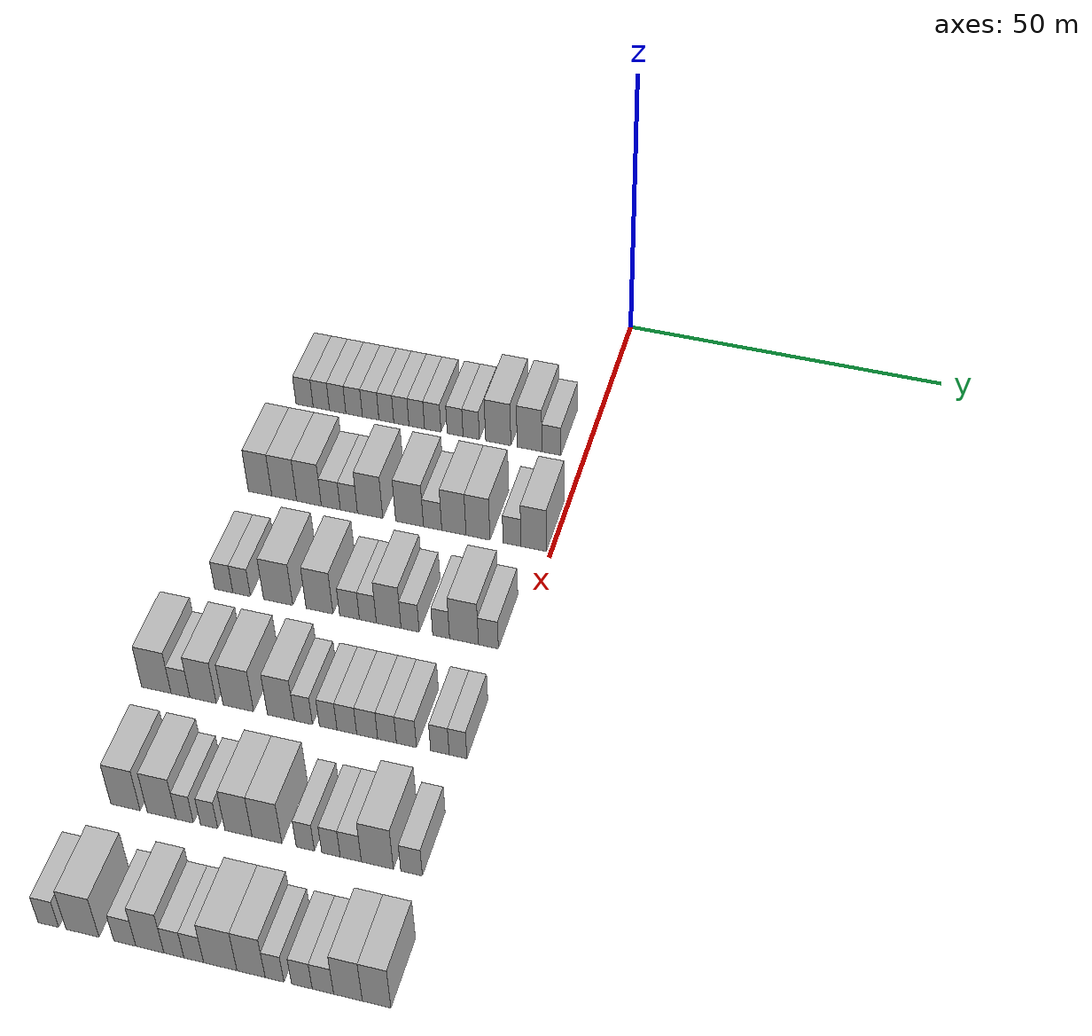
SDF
<sdf version="1.6">
 <world name="default">
  <model name="building_74">
   <static>1</static>
   <pose>25.0000 -44.7502 0 0.000000 0.000000 0.000000</pose>
   <link name="link">
    <pose>0 0 3.00 0 0 0</pose>
    <collision name="collision"><geometry><box><size>10.0000 2.8169 6.0000</size></box></geometry></collision>
    <visual name="visual">
     <cast_shadows>0</cast_shadows>
     <geometry><box><size>10.0000 2.8169 6.0000</size></box></geometry>
     <material>
      <script>
       <uri>model://HANNAS_wall/materials/scripts</uri>
       <uri>model://HANNAS_wall/materials/textures</uri>
       <name>vrc/HANNAS_wall</name>
      </script>
     </material>
    </visual>
   </link>
  </model>
  <model name="building_75">
   <static>1</static>
   <pose>25.0000 -42.0156 0 0.000000 0.000000 0.000000</pose>
   <link name="link">
    <pose>0 0 3.00 0 0 0</pose>
    <collision name="collision"><geometry><box><size>10.0000 2.6525 6.0000</size></box></geometry></collision>
    <visual name="visual">
     <cast_shadows>0</cast_shadows>
     <geometry><box><size>10.0000 2.6525 6.0000</size></box></geometry>
     <material>
      <script>
       <uri>model://HANNAS_wall/materials/scripts</uri>
       <uri>model://HANNAS_wall/materials/textures</uri>
       <name>vrc/HANNAS_wall</name>
      </script>
     </material>
    </visual>
   </link>
  </model>
  <model name="building_76">
   <static>1</static>
   <pose>25.0000 -39.3534 0 0.000000 0.000000 0.000000</pose>
   <link name="link">
    <pose>0 0 3.00 0 0 0</pose>
    <collision name="collision"><geometry><box><size>10.0000 2.6719 6.0000</size></box></geometry></collision>
    <visual name="visual">
     <cast_shadows>0</cast_shadows>
     <geometry><box><size>10.0000 2.6719 6.0000</size></box></geometry>
     <material>
      <script>
       <uri>model://HANNAS_wall/materials/scripts</uri>
       <uri>model://HANNAS_wall/materials/textures</uri>
       <name>vrc/HANNAS_wall</name>
      </script>
     </material>
    </visual>
   </link>
  </model>
  <model name="building_77">
   <static>1</static>
   <pose>25.0000 -36.6724 0 0.000000 0.000000 0.000000</pose>
   <link name="link">
    <pose>0 0 3.00 0 0 0</pose>
    <collision name="collision"><geometry><box><size>10.0000 2.6900 6.0000</size></box></geometry></collision>
    <visual name="visual">
     <cast_shadows>0</cast_shadows>
     <geometry><box><size>10.0000 2.6900 6.0000</size></box></geometry>
     <material>
      <script>
       <uri>model://HANNAS_wall/materials/scripts</uri>
       <uri>model://HANNAS_wall/materials/textures</uri>
       <name>vrc/HANNAS_wall</name>
      </script>
     </material>
    </visual>
   </link>
  </model>
  <model name="building_78">
   <static>1</static>
   <pose>25.0000 -33.9858 0 0.000000 0.000000 0.000000</pose>
   <link name="link">
    <pose>0 0 3.00 0 0 0</pose>
    <collision name="collision"><geometry><box><size>10.0000 2.6833 6.0000</size></box></geometry></collision>
    <visual name="visual">
     <cast_shadows>0</cast_shadows>
     <geometry><box><size>10.0000 2.6833 6.0000</size></box></geometry>
     <material>
      <script>
       <uri>model://HANNAS_wall/materials/scripts</uri>
       <uri>model://HANNAS_wall/materials/textures</uri>
       <name>vrc/HANNAS_wall</name>
      </script>
     </material>
    </visual>
   </link>
  </model>
  <model name="building_79">
   <static>1</static>
   <pose>25.0000 -31.4411 0 0.000000 0.000000 0.000000</pose>
   <link name="link">
    <pose>0 0 3.00 0 0 0</pose>
    <collision name="collision"><geometry><box><size>10.0000 2.4060 6.0000</size></box></geometry></collision>
    <visual name="visual">
     <cast_shadows>0</cast_shadows>
     <geometry><box><size>10.0000 2.4060 6.0000</size></box></geometry>
     <material>
      <script>
       <uri>model://HANNAS_wall/materials/scripts</uri>
       <uri>model://HANNAS_wall/materials/textures</uri>
       <name>vrc/HANNAS_wall</name>
      </script>
     </material>
    </visual>
   </link>
  </model>
  <model name="building_80">
   <static>1</static>
   <pose>25.0000 -29.0162 0 0.000000 0.000000 0.000000</pose>
   <link name="link">
    <pose>0 0 3.00 0 0 0</pose>
    <collision name="collision"><geometry><box><size>10.0000 2.4437 6.0000</size></box></geometry></collision>
    <visual name="visual">
     <cast_shadows>0</cast_shadows>
     <geometry><box><size>10.0000 2.4437 6.0000</size></box></geometry>
     <material>
      <script>
       <uri>model://HANNAS_wall/materials/scripts</uri>
       <uri>model://HANNAS_wall/materials/textures</uri>
       <name>vrc/HANNAS_wall</name>
      </script>
     </material>
    </visual>
   </link>
  </model>
  <model name="building_81">
   <static>1</static>
   <pose>25.0000 -26.5391 0 0.000000 0.000000 0.000000</pose>
   <link name="link">
    <pose>0 0 3.00 0 0 0</pose>
    <collision name="collision"><geometry><box><size>10.0000 2.5107 6.0000</size></box></geometry></collision>
    <visual name="visual">
     <cast_shadows>0</cast_shadows>
     <geometry><box><size>10.0000 2.5107 6.0000</size></box></geometry>
     <material>
      <script>
       <uri>model://HANNAS_wall/materials/scripts</uri>
       <uri>model://HANNAS_wall/materials/textures</uri>
       <name>vrc/HANNAS_wall</name>
      </script>
     </material>
    </visual>
   </link>
  </model>
  <model name="building_82">
   <static>1</static>
   <pose>25.0000 -23.9669 0 0.000000 0.000000 0.000000</pose>
   <link name="link">
    <pose>0 0 3.00 0 0 0</pose>
    <collision name="collision"><geometry><box><size>10.0000 2.6337 6.0000</size></box></geometry></collision>
    <visual name="visual">
     <cast_shadows>0</cast_shadows>
     <geometry><box><size>10.0000 2.6337 6.0000</size></box></geometry>
     <material>
      <script>
       <uri>model://HANNAS_wall/materials/scripts</uri>
       <uri>model://HANNAS_wall/materials/textures</uri>
       <name>vrc/HANNAS_wall</name>
      </script>
     </material>
    </visual>
   </link>
  </model>
  <model name="building_83">
   <static>1</static>
   <pose>25.0000 -20.3815 0 0.000000 0.000000 0.000000</pose>
   <link name="link">
    <pose>0 0 3.00 0 0 0</pose>
    <collision name="collision"><geometry><box><size>10.0000 2.5370 6.0000</size></box></geometry></collision>
    <visual name="visual">
     <cast_shadows>0</cast_shadows>
     <geometry><box><size>10.0000 2.5370 6.0000</size></box></geometry>
     <material>
      <script>
       <uri>model://HANNAS_wall/materials/scripts</uri>
       <uri>model://HANNAS_wall/materials/textures</uri>
       <name>vrc/HANNAS_wall</name>
      </script>
     </material>
    </visual>
   </link>
  </model>
  <model name="building_84">
   <static>1</static>
   <pose>25.0000 -17.8090 0 0.000000 0.000000 0.000000</pose>
   <link name="link">
    <pose>0 0 3.00 0 0 0</pose>
    <collision name="collision"><geometry><box><size>10.0000 2.6080 6.0000</size></box></geometry></collision>
    <visual name="visual">
     <cast_shadows>0</cast_shadows>
     <geometry><box><size>10.0000 2.6080 6.0000</size></box></geometry>
     <material>
      <script>
       <uri>model://HANNAS_wall/materials/scripts</uri>
       <uri>model://HANNAS_wall/materials/textures</uri>
       <name>vrc/HANNAS_wall</name>
      </script>
     </material>
    </visual>
   </link>
  </model>
  <model name="building_85">
   <static>1</static>
   <pose>25.0000 -13.5011 0 0.000000 0.000000 0.000000</pose>
   <link name="link">
    <pose>0 0 4.50 0 0 0</pose>
    <collision name="collision"><geometry><box><size>10.0000 4.0079 9.0000</size></box></geometry></collision>
    <visual name="visual">
     <cast_shadows>0</cast_shadows>
     <geometry><box><size>10.0000 4.0079 9.0000</size></box></geometry>
     <material>
      <script>
       <uri>model://HANNAS_wall/materials/scripts</uri>
       <uri>model://HANNAS_wall/materials/textures</uri>
       <name>vrc/HANNAS_wall</name>
      </script>
     </material>
    </visual>
   </link>
  </model>
  <model name="building_86">
   <static>1</static>
   <pose>25.0000 -8.5472 0 0.000000 0.000000 0.000000</pose>
   <link name="link">
    <pose>0 0 4.50 0 0 0</pose>
    <collision name="collision"><geometry><box><size>10.0000 3.8999 9.0000</size></box></geometry></collision>
    <visual name="visual">
     <cast_shadows>0</cast_shadows>
     <geometry><box><size>10.0000 3.8999 9.0000</size></box></geometry>
     <material>
      <script>
       <uri>model://HANNAS_wall/materials/scripts</uri>
       <uri>model://HANNAS_wall/materials/textures</uri>
       <name>vrc/HANNAS_wall</name>
      </script>
     </material>
    </visual>
   </link>
  </model>
  <model name="building_87">
   <static>1</static>
   <pose>25.0000 -5.0996 0 0.000000 0.000000 0.000000</pose>
   <link name="link">
    <pose>0 0 3.00 0 0 0</pose>
    <collision name="collision"><geometry><box><size>10.0000 2.9952 6.0000</size></box></geometry></collision>
    <visual name="visual">
     <cast_shadows>0</cast_shadows>
     <geometry><box><size>10.0000 2.9952 6.0000</size></box></geometry>
     <material>
      <script>
       <uri>model://HANNAS_wall/materials/scripts</uri>
       <uri>model://HANNAS_wall/materials/textures</uri>
       <name>vrc/HANNAS_wall</name>
      </script>
     </material>
    </visual>
   </link>
  </model>
  <model name="building_249">
   <static>1</static>
   <pose>44.0000 -45.0602 0 0.000000 0.000000 0.000000</pose>
   <link name="link">
    <pose>0 0 4.50 0 0 0</pose>
    <collision name="collision"><geometry><box><size>10.0000 3.7171 9.0000</size></box></geometry></collision>
    <visual name="visual">
     <cast_shadows>0</cast_shadows>
     <geometry><box><size>10.0000 3.7171 9.0000</size></box></geometry>
     <material>
      <script>
       <uri>model://HANNAS_wall/materials/scripts</uri>
       <uri>model://HANNAS_wall/materials/textures</uri>
       <name>vrc/HANNAS_wall</name>
      </script>
     </material>
    </visual>
   </link>
  </model>
  <model name="building_250">
   <static>1</static>
   <pose>44.0000 -41.2420 0 0.000000 0.000000 0.000000</pose>
   <link name="link">
    <pose>0 0 4.50 0 0 0</pose>
    <collision name="collision"><geometry><box><size>10.0000 3.9193 9.0000</size></box></geometry></collision>
    <visual name="visual">
     <cast_shadows>0</cast_shadows>
     <geometry><box><size>10.0000 3.9193 9.0000</size></box></geometry>
     <material>
      <script>
       <uri>model://HANNAS_wall/materials/scripts</uri>
       <uri>model://HANNAS_wall/materials/textures</uri>
       <name>vrc/HANNAS_wall</name>
      </script>
     </material>
    </visual>
   </link>
  </model>
  <model name="building_251">
   <static>1</static>
   <pose>44.0000 -37.3379 0 0.000000 0.000000 0.000000</pose>
   <link name="link">
    <pose>0 0 4.50 0 0 0</pose>
    <collision name="collision"><geometry><box><size>10.0000 3.8889 9.0000</size></box></geometry></collision>
    <visual name="visual">
     <cast_shadows>0</cast_shadows>
     <geometry><box><size>10.0000 3.8889 9.0000</size></box></geometry>
     <material>
      <script>
       <uri>model://HANNAS_wall/materials/scripts</uri>
       <uri>model://HANNAS_wall/materials/textures</uri>
       <name>vrc/HANNAS_wall</name>
      </script>
     </material>
    </visual>
   </link>
  </model>
  <model name="building_252">
   <static>1</static>
   <pose>44.0000 -33.9100 0 0.000000 0.000000 0.000000</pose>
   <link name="link">
    <pose>0 0 3.00 0 0 0</pose>
    <collision name="collision"><geometry><box><size>10.0000 2.9669 6.0000</size></box></geometry></collision>
    <visual name="visual">
     <cast_shadows>0</cast_shadows>
     <geometry><box><size>10.0000 2.9669 6.0000</size></box></geometry>
     <material>
      <script>
       <uri>model://HANNAS_wall/materials/scripts</uri>
       <uri>model://HANNAS_wall/materials/textures</uri>
       <name>vrc/HANNAS_wall</name>
      </script>
     </material>
    </visual>
   </link>
  </model>
  <model name="building_253">
   <static>1</static>
   <pose>44.0000 -31.0864 0 0.000000 0.000000 0.000000</pose>
   <link name="link">
    <pose>0 0 3.00 0 0 0</pose>
    <collision name="collision"><geometry><box><size>10.0000 2.6803 6.0000</size></box></geometry></collision>
    <visual name="visual">
     <cast_shadows>0</cast_shadows>
     <geometry><box><size>10.0000 2.6803 6.0000</size></box></geometry>
     <material>
      <script>
       <uri>model://HANNAS_wall/materials/scripts</uri>
       <uri>model://HANNAS_wall/materials/textures</uri>
       <name>vrc/HANNAS_wall</name>
      </script>
     </material>
    </visual>
   </link>
  </model>
  <model name="building_254">
   <static>1</static>
   <pose>44.0000 -27.7738 0 0.000000 0.000000 0.000000</pose>
   <link name="link">
    <pose>0 0 4.50 0 0 0</pose>
    <collision name="collision"><geometry><box><size>10.0000 3.9448 9.0000</size></box></geometry></collision>
    <visual name="visual">
     <cast_shadows>0</cast_shadows>
     <geometry><box><size>10.0000 3.9448 9.0000</size></box></geometry>
     <material>
      <script>
       <uri>model://HANNAS_wall/materials/scripts</uri>
       <uri>model://HANNAS_wall/materials/textures</uri>
       <name>vrc/HANNAS_wall</name>
      </script>
     </material>
    </visual>
   </link>
  </model>
  <model name="building_255">
   <static>1</static>
   <pose>44.0000 -21.6521 0 0.000000 0.000000 0.000000</pose>
   <link name="link">
    <pose>0 0 4.50 0 0 0</pose>
    <collision name="collision"><geometry><box><size>10.0000 4.2985 9.0000</size></box></geometry></collision>
    <visual name="visual">
     <cast_shadows>0</cast_shadows>
     <geometry><box><size>10.0000 4.2985 9.0000</size></box></geometry>
     <material>
      <script>
       <uri>model://HANNAS_wall/materials/scripts</uri>
       <uri>model://HANNAS_wall/materials/textures</uri>
       <name>vrc/HANNAS_wall</name>
      </script>
     </material>
    </visual>
   </link>
  </model>
  <model name="building_256">
   <static>1</static>
   <pose>44.0000 -18.0922 0 0.000000 0.000000 0.000000</pose>
   <link name="link">
    <pose>0 0 3.00 0 0 0</pose>
    <collision name="collision"><geometry><box><size>10.0000 2.8213 6.0000</size></box></geometry></collision>
    <visual name="visual">
     <cast_shadows>0</cast_shadows>
     <geometry><box><size>10.0000 2.8213 6.0000</size></box></geometry>
     <material>
      <script>
       <uri>model://HANNAS_wall/materials/scripts</uri>
       <uri>model://HANNAS_wall/materials/textures</uri>
       <name>vrc/HANNAS_wall</name>
      </script>
     </material>
    </visual>
   </link>
  </model>
  <model name="building_257">
   <static>1</static>
   <pose>44.0000 -14.8153 0 0.000000 0.000000 0.000000</pose>
   <link name="link">
    <pose>0 0 4.50 0 0 0</pose>
    <collision name="collision"><geometry><box><size>10.0000 3.7326 9.0000</size></box></geometry></collision>
    <visual name="visual">
     <cast_shadows>0</cast_shadows>
     <geometry><box><size>10.0000 3.7326 9.0000</size></box></geometry>
     <material>
      <script>
       <uri>model://HANNAS_wall/materials/scripts</uri>
       <uri>model://HANNAS_wall/materials/textures</uri>
       <name>vrc/HANNAS_wall</name>
      </script>
     </material>
    </visual>
   </link>
  </model>
  <model name="building_258">
   <static>1</static>
   <pose>44.0000 -11.1156 0 0.000000 0.000000 0.000000</pose>
   <link name="link">
    <pose>0 0 4.50 0 0 0</pose>
    <collision name="collision"><geometry><box><size>10.0000 3.6668 9.0000</size></box></geometry></collision>
    <visual name="visual">
     <cast_shadows>0</cast_shadows>
     <geometry><box><size>10.0000 3.6668 9.0000</size></box></geometry>
     <material>
      <script>
       <uri>model://HANNAS_wall/materials/scripts</uri>
       <uri>model://HANNAS_wall/materials/textures</uri>
       <name>vrc/HANNAS_wall</name>
      </script>
     </material>
    </visual>
   </link>
  </model>
  <model name="building_259">
   <static>1</static>
   <pose>44.0000 -5.9180 0 0.000000 0.000000 0.000000</pose>
   <link name="link">
    <pose>0 0 3.00 0 0 0</pose>
    <collision name="collision"><geometry><box><size>10.0000 2.7283 6.0000</size></box></geometry></collision>
    <visual name="visual">
     <cast_shadows>0</cast_shadows>
     <geometry><box><size>10.0000 2.7283 6.0000</size></box></geometry>
     <material>
      <script>
       <uri>model://HANNAS_wall/materials/scripts</uri>
       <uri>model://HANNAS_wall/materials/textures</uri>
       <name>vrc/HANNAS_wall</name>
      </script>
     </material>
    </visual>
   </link>
  </model>
  <model name="building_260">
   <static>1</static>
   <pose>44.0000 -2.6254 0 0.000000 0.000000 0.000000</pose>
   <link name="link">
    <pose>0 0 4.50 0 0 0</pose>
    <collision name="collision"><geometry><box><size>10.0000 3.8569 9.0000</size></box></geometry></collision>
    <visual name="visual">
     <cast_shadows>0</cast_shadows>
     <geometry><box><size>10.0000 3.8569 9.0000</size></box></geometry>
     <material>
      <script>
       <uri>model://HANNAS_wall/materials/scripts</uri>
       <uri>model://HANNAS_wall/materials/textures</uri>
       <name>vrc/HANNAS_wall</name>
      </script>
     </material>
    </visual>
   </link>
  </model>
  <model name="building_415">
   <static>1</static>
   <pose>63.0000 -43.5855 0 0.000000 0.000000 0.000000</pose>
   <link name="link">
    <pose>0 0 3.00 0 0 0</pose>
    <collision name="collision"><geometry><box><size>10.0000 2.7796 6.0000</size></box></geometry></collision>
    <visual name="visual">
     <cast_shadows>0</cast_shadows>
     <geometry><box><size>10.0000 2.7796 6.0000</size></box></geometry>
     <material>
      <script>
       <uri>model://HANNAS_wall/materials/scripts</uri>
       <uri>model://HANNAS_wall/materials/textures</uri>
       <name>vrc/HANNAS_wall</name>
      </script>
     </material>
    </visual>
   </link>
  </model>
  <model name="building_416">
   <static>1</static>
   <pose>63.0000 -40.8565 0 0.000000 0.000000 0.000000</pose>
   <link name="link">
    <pose>0 0 3.00 0 0 0</pose>
    <collision name="collision"><geometry><box><size>10.0000 2.6785 6.0000</size></box></geometry></collision>
    <visual name="visual">
     <cast_shadows>0</cast_shadows>
     <geometry><box><size>10.0000 2.6785 6.0000</size></box></geometry>
     <material>
      <script>
       <uri>model://HANNAS_wall/materials/scripts</uri>
       <uri>model://HANNAS_wall/materials/textures</uri>
       <name>vrc/HANNAS_wall</name>
      </script>
     </material>
    </visual>
   </link>
  </model>
  <model name="building_417">
   <static>1</static>
   <pose>63.0000 -35.2997 0 0.000000 0.000000 0.000000</pose>
   <link name="link">
    <pose>0 0 4.50 0 0 0</pose>
    <collision name="collision"><geometry><box><size>10.0000 4.4351 9.0000</size></box></geometry></collision>
    <visual name="visual">
     <cast_shadows>0</cast_shadows>
     <geometry><box><size>10.0000 4.4351 9.0000</size></box></geometry>
     <material>
      <script>
       <uri>model://HANNAS_wall/materials/scripts</uri>
       <uri>model://HANNAS_wall/materials/textures</uri>
       <name>vrc/HANNAS_wall</name>
      </script>
     </material>
    </visual>
   </link>
  </model>
  <model name="building_418">
   <static>1</static>
   <pose>63.0000 -29.0550 0 0.000000 0.000000 0.000000</pose>
   <link name="link">
    <pose>0 0 4.50 0 0 0</pose>
    <collision name="collision"><geometry><box><size>10.0000 4.0544 9.0000</size></box></geometry></collision>
    <visual name="visual">
     <cast_shadows>0</cast_shadows>
     <geometry><box><size>10.0000 4.0544 9.0000</size></box></geometry>
     <material>
      <script>
       <uri>model://HANNAS_wall/materials/scripts</uri>
       <uri>model://HANNAS_wall/materials/textures</uri>
       <name>vrc/HANNAS_wall</name>
      </script>
     </material>
    </visual>
   </link>
  </model>
  <model name="building_419">
   <static>1</static>
   <pose>63.0000 -24.5493 0 0.000000 0.000000 0.000000</pose>
   <link name="link">
    <pose>0 0 3.00 0 0 0</pose>
    <collision name="collision"><geometry><box><size>10.0000 2.9571 6.0000</size></box></geometry></collision>
    <visual name="visual">
     <cast_shadows>0</cast_shadows>
     <geometry><box><size>10.0000 2.9571 6.0000</size></box></geometry>
     <material>
      <script>
       <uri>model://HANNAS_wall/materials/scripts</uri>
       <uri>model://HANNAS_wall/materials/textures</uri>
       <name>vrc/HANNAS_wall</name>
      </script>
     </material>
    </visual>
   </link>
  </model>
  <model name="building_420">
   <static>1</static>
   <pose>63.0000 -21.8035 0 0.000000 0.000000 0.000000</pose>
   <link name="link">
    <pose>0 0 3.00 0 0 0</pose>
    <collision name="collision"><geometry><box><size>10.0000 2.5345 6.0000</size></box></geometry></collision>
    <visual name="visual">
     <cast_shadows>0</cast_shadows>
     <geometry><box><size>10.0000 2.5345 6.0000</size></box></geometry>
     <material>
      <script>
       <uri>model://HANNAS_wall/materials/scripts</uri>
       <uri>model://HANNAS_wall/materials/textures</uri>
       <name>vrc/HANNAS_wall</name>
      </script>
     </material>
    </visual>
   </link>
  </model>
  <model name="building_421">
   <static>1</static>
   <pose>63.0000 -18.7014 0 0.000000 0.000000 0.000000</pose>
   <link name="link">
    <pose>0 0 4.50 0 0 0</pose>
    <collision name="collision"><geometry><box><size>10.0000 3.6697 9.0000</size></box></geometry></collision>
    <visual name="visual">
     <cast_shadows>0</cast_shadows>
     <geometry><box><size>10.0000 3.6697 9.0000</size></box></geometry>
     <material>
      <script>
       <uri>model://HANNAS_wall/materials/scripts</uri>
       <uri>model://HANNAS_wall/materials/textures</uri>
       <name>vrc/HANNAS_wall</name>
      </script>
     </material>
    </visual>
   </link>
  </model>
  <model name="building_422">
   <static>1</static>
   <pose>63.0000 -15.5226 0 0.000000 0.000000 0.000000</pose>
   <link name="link">
    <pose>0 0 3.00 0 0 0</pose>
    <collision name="collision"><geometry><box><size>10.0000 2.6881 6.0000</size></box></geometry></collision>
    <visual name="visual">
     <cast_shadows>0</cast_shadows>
     <geometry><box><size>10.0000 2.6881 6.0000</size></box></geometry>
     <material>
      <script>
       <uri>model://HANNAS_wall/materials/scripts</uri>
       <uri>model://HANNAS_wall/materials/textures</uri>
       <name>vrc/HANNAS_wall</name>
      </script>
     </material>
    </visual>
   </link>
  </model>
  <model name="building_423">
   <static>1</static>
   <pose>63.0000 -10.9359 0 0.000000 0.000000 0.000000</pose>
   <link name="link">
    <pose>0 0 3.00 0 0 0</pose>
    <collision name="collision"><geometry><box><size>10.0000 2.4854 6.0000</size></box></geometry></collision>
    <visual name="visual">
     <cast_shadows>0</cast_shadows>
     <geometry><box><size>10.0000 2.4854 6.0000</size></box></geometry>
     <material>
      <script>
       <uri>model://HANNAS_wall/materials/scripts</uri>
       <uri>model://HANNAS_wall/materials/textures</uri>
       <name>vrc/HANNAS_wall</name>
      </script>
     </material>
    </visual>
   </link>
  </model>
  <model name="building_424">
   <static>1</static>
   <pose>63.0000 -7.5674 0 0.000000 0.000000 0.000000</pose>
   <link name="link">
    <pose>0 0 4.50 0 0 0</pose>
    <collision name="collision"><geometry><box><size>10.0000 4.2517 9.0000</size></box></geometry></collision>
    <visual name="visual">
     <cast_shadows>0</cast_shadows>
     <geometry><box><size>10.0000 4.2517 9.0000</size></box></geometry>
     <material>
      <script>
       <uri>model://HANNAS_wall/materials/scripts</uri>
       <uri>model://HANNAS_wall/materials/textures</uri>
       <name>vrc/HANNAS_wall</name>
      </script>
     </material>
    </visual>
   </link>
  </model>
  <model name="building_425">
   <static>1</static>
   <pose>63.0000 -3.9859 0 0.000000 0.000000 0.000000</pose>
   <link name="link">
    <pose>0 0 3.00 0 0 0</pose>
    <collision name="collision"><geometry><box><size>10.0000 2.9112 6.0000</size></box></geometry></collision>
    <visual name="visual">
     <cast_shadows>0</cast_shadows>
     <geometry><box><size>10.0000 2.9112 6.0000</size></box></geometry>
     <material>
      <script>
       <uri>model://HANNAS_wall/materials/scripts</uri>
       <uri>model://HANNAS_wall/materials/textures</uri>
       <name>vrc/HANNAS_wall</name>
      </script>
     </material>
    </visual>
   </link>
  </model>
  <model name="building_593">
   <static>1</static>
   <pose>82.0000 -46.2434 0 0.000000 0.000000 0.000000</pose>
   <link name="link">
    <pose>0 0 4.50 0 0 0</pose>
    <collision name="collision"><geometry><box><size>10.0000 4.3582 9.0000</size></box></geometry></collision>
    <visual name="visual">
     <cast_shadows>0</cast_shadows>
     <geometry><box><size>10.0000 4.3582 9.0000</size></box></geometry>
     <material>
      <script>
       <uri>model://HANNAS_wall/materials/scripts</uri>
       <uri>model://HANNAS_wall/materials/textures</uri>
       <name>vrc/HANNAS_wall</name>
      </script>
     </material>
    </visual>
   </link>
  </model>
  <model name="building_594">
   <static>1</static>
   <pose>82.0000 -42.6801 0 0.000000 0.000000 0.000000</pose>
   <link name="link">
    <pose>0 0 3.00 0 0 0</pose>
    <collision name="collision"><geometry><box><size>10.0000 2.7683 6.0000</size></box></geometry></collision>
    <visual name="visual">
     <cast_shadows>0</cast_shadows>
     <geometry><box><size>10.0000 2.7683 6.0000</size></box></geometry>
     <material>
      <script>
       <uri>model://HANNAS_wall/materials/scripts</uri>
       <uri>model://HANNAS_wall/materials/textures</uri>
       <name>vrc/HANNAS_wall</name>
      </script>
     </material>
    </visual>
   </link>
  </model>
  <model name="building_595">
   <static>1</static>
   <pose>82.0000 -39.3612 0 0.000000 0.000000 0.000000</pose>
   <link name="link">
    <pose>0 0 4.50 0 0 0</pose>
    <collision name="collision"><geometry><box><size>10.0000 3.8695 9.0000</size></box></geometry></collision>
    <visual name="visual">
     <cast_shadows>0</cast_shadows>
     <geometry><box><size>10.0000 3.8695 9.0000</size></box></geometry>
     <material>
      <script>
       <uri>model://HANNAS_wall/materials/scripts</uri>
       <uri>model://HANNAS_wall/materials/textures</uri>
       <name>vrc/HANNAS_wall</name>
      </script>
     </material>
    </visual>
   </link>
  </model>
  <model name="building_596">
   <static>1</static>
   <pose>82.0000 -34.1932 0 0.000000 0.000000 0.000000</pose>
   <link name="link">
    <pose>0 0 4.50 0 0 0</pose>
    <collision name="collision"><geometry><box><size>10.0000 4.4665 9.0000</size></box></geometry></collision>
    <visual name="visual">
     <cast_shadows>0</cast_shadows>
     <geometry><box><size>10.0000 4.4665 9.0000</size></box></geometry>
     <material>
      <script>
       <uri>model://HANNAS_wall/materials/scripts</uri>
       <uri>model://HANNAS_wall/materials/textures</uri>
       <name>vrc/HANNAS_wall</name>
      </script>
     </material>
    </visual>
   </link>
  </model>
  <model name="building_597">
   <static>1</static>
   <pose>82.0000 -27.9973 0 0.000000 0.000000 0.000000</pose>
   <link name="link">
    <pose>0 0 4.50 0 0 0</pose>
    <collision name="collision"><geometry><box><size>10.0000 3.9252 9.0000</size></box></geometry></collision>
    <visual name="visual">
     <cast_shadows>0</cast_shadows>
     <geometry><box><size>10.0000 3.9252 9.0000</size></box></geometry>
     <material>
      <script>
       <uri>model://HANNAS_wall/materials/scripts</uri>
       <uri>model://HANNAS_wall/materials/textures</uri>
       <name>vrc/HANNAS_wall</name>
      </script>
     </material>
    </visual>
   </link>
  </model>
  <model name="building_598">
   <static>1</static>
   <pose>82.0000 -24.7381 0 0.000000 0.000000 0.000000</pose>
   <link name="link">
    <pose>0 0 3.00 0 0 0</pose>
    <collision name="collision"><geometry><box><size>10.0000 2.5933 6.0000</size></box></geometry></collision>
    <visual name="visual">
     <cast_shadows>0</cast_shadows>
     <geometry><box><size>10.0000 2.5933 6.0000</size></box></geometry>
     <material>
      <script>
       <uri>model://HANNAS_wall/materials/scripts</uri>
       <uri>model://HANNAS_wall/materials/textures</uri>
       <name>vrc/HANNAS_wall</name>
      </script>
     </material>
    </visual>
   </link>
  </model>
  <model name="building_599">
   <static>1</static>
   <pose>82.0000 -21.1747 0 0.000000 0.000000 0.000000</pose>
   <link name="link">
    <pose>0 0 3.00 0 0 0</pose>
    <collision name="collision"><geometry><box><size>10.0000 2.5335 6.0000</size></box></geometry></collision>
    <visual name="visual">
     <cast_shadows>0</cast_shadows>
     <geometry><box><size>10.0000 2.5335 6.0000</size></box></geometry>
     <material>
      <script>
       <uri>model://HANNAS_wall/materials/scripts</uri>
       <uri>model://HANNAS_wall/materials/textures</uri>
       <name>vrc/HANNAS_wall</name>
      </script>
     </material>
    </visual>
   </link>
  </model>
  <model name="building_600">
   <static>1</static>
   <pose>82.0000 -18.4955 0 0.000000 0.000000 0.000000</pose>
   <link name="link">
    <pose>0 0 3.00 0 0 0</pose>
    <collision name="collision"><geometry><box><size>10.0000 2.8248 6.0000</size></box></geometry></collision>
    <visual name="visual">
     <cast_shadows>0</cast_shadows>
     <geometry><box><size>10.0000 2.8248 6.0000</size></box></geometry>
     <material>
      <script>
       <uri>model://HANNAS_wall/materials/scripts</uri>
       <uri>model://HANNAS_wall/materials/textures</uri>
       <name>vrc/HANNAS_wall</name>
      </script>
     </material>
    </visual>
   </link>
  </model>
  <model name="building_601">
   <static>1</static>
   <pose>82.0000 -15.5870 0 0.000000 0.000000 0.000000</pose>
   <link name="link">
    <pose>0 0 3.00 0 0 0</pose>
    <collision name="collision"><geometry><box><size>10.0000 2.9923 6.0000</size></box></geometry></collision>
    <visual name="visual">
     <cast_shadows>0</cast_shadows>
     <geometry><box><size>10.0000 2.9923 6.0000</size></box></geometry>
     <material>
      <script>
       <uri>model://HANNAS_wall/materials/scripts</uri>
       <uri>model://HANNAS_wall/materials/textures</uri>
       <name>vrc/HANNAS_wall</name>
      </script>
     </material>
    </visual>
   </link>
  </model>
  <model name="building_602">
   <static>1</static>
   <pose>82.0000 -12.7609 0 0.000000 0.000000 0.000000</pose>
   <link name="link">
    <pose>0 0 3.00 0 0 0</pose>
    <collision name="collision"><geometry><box><size>10.0000 2.6600 6.0000</size></box></geometry></collision>
    <visual name="visual">
     <cast_shadows>0</cast_shadows>
     <geometry><box><size>10.0000 2.6600 6.0000</size></box></geometry>
     <material>
      <script>
       <uri>model://HANNAS_wall/materials/scripts</uri>
       <uri>model://HANNAS_wall/materials/textures</uri>
       <name>vrc/HANNAS_wall</name>
      </script>
     </material>
    </visual>
   </link>
  </model>
  <model name="building_603">
   <static>1</static>
   <pose>82.0000 -10.0011 0 0.000000 0.000000 0.000000</pose>
   <link name="link">
    <pose>0 0 3.00 0 0 0</pose>
    <collision name="collision"><geometry><box><size>10.0000 2.8596 6.0000</size></box></geometry></collision>
    <visual name="visual">
     <cast_shadows>0</cast_shadows>
     <geometry><box><size>10.0000 2.8596 6.0000</size></box></geometry>
     <material>
      <script>
       <uri>model://HANNAS_wall/materials/scripts</uri>
       <uri>model://HANNAS_wall/materials/textures</uri>
       <name>vrc/HANNAS_wall</name>
      </script>
     </material>
    </visual>
   </link>
  </model>
  <model name="building_604">
   <static>1</static>
   <pose>82.0000 -5.2666 0 0.000000 0.000000 0.000000</pose>
   <link name="link">
    <pose>0 0 3.00 0 0 0</pose>
    <collision name="collision"><geometry><box><size>10.0000 2.6095 6.0000</size></box></geometry></collision>
    <visual name="visual">
     <cast_shadows>0</cast_shadows>
     <geometry><box><size>10.0000 2.6095 6.0000</size></box></geometry>
     <material>
      <script>
       <uri>model://HANNAS_wall/materials/scripts</uri>
       <uri>model://HANNAS_wall/materials/textures</uri>
       <name>vrc/HANNAS_wall</name>
      </script>
     </material>
    </visual>
   </link>
  </model>
  <model name="building_605">
   <static>1</static>
   <pose>82.0000 -2.7140 0 0.000000 0.000000 0.000000</pose>
   <link name="link">
    <pose>0 0 3.00 0 0 0</pose>
    <collision name="collision"><geometry><box><size>10.0000 2.4956 6.0000</size></box></geometry></collision>
    <visual name="visual">
     <cast_shadows>0</cast_shadows>
     <geometry><box><size>10.0000 2.4956 6.0000</size></box></geometry>
     <material>
      <script>
       <uri>model://HANNAS_wall/materials/scripts</uri>
       <uri>model://HANNAS_wall/materials/textures</uri>
       <name>vrc/HANNAS_wall</name>
      </script>
     </material>
    </visual>
   </link>
  </model>
  <model name="building_768">
   <static>1</static>
   <pose>101.0000 -42.9031 0 0.000000 0.000000 0.000000</pose>
   <link name="link">
    <pose>0 0 4.50 0 0 0</pose>
    <collision name="collision"><geometry><box><size>10.0000 4.1627 9.0000</size></box></geometry></collision>
    <visual name="visual">
     <cast_shadows>0</cast_shadows>
     <geometry><box><size>10.0000 4.1627 9.0000</size></box></geometry>
     <material>
      <script>
       <uri>model://HANNAS_wall/materials/scripts</uri>
       <uri>model://HANNAS_wall/materials/textures</uri>
       <name>vrc/HANNAS_wall</name>
      </script>
     </material>
    </visual>
   </link>
  </model>
  <model name="building_769">
   <static>1</static>
   <pose>101.0000 -37.7762 0 0.000000 0.000000 0.000000</pose>
   <link name="link">
    <pose>0 0 4.50 0 0 0</pose>
    <collision name="collision"><geometry><box><size>10.0000 4.0912 9.0000</size></box></geometry></collision>
    <visual name="visual">
     <cast_shadows>0</cast_shadows>
     <geometry><box><size>10.0000 4.0912 9.0000</size></box></geometry>
     <material>
      <script>
       <uri>model://HANNAS_wall/materials/scripts</uri>
       <uri>model://HANNAS_wall/materials/textures</uri>
       <name>vrc/HANNAS_wall</name>
      </script>
     </material>
    </visual>
   </link>
  </model>
  <model name="building_770">
   <static>1</static>
   <pose>101.0000 -34.5259 0 0.000000 0.000000 0.000000</pose>
   <link name="link">
    <pose>0 0 3.00 0 0 0</pose>
    <collision name="collision"><geometry><box><size>10.0000 2.4093 6.0000</size></box></geometry></collision>
    <visual name="visual">
     <cast_shadows>0</cast_shadows>
     <geometry><box><size>10.0000 2.4093 6.0000</size></box></geometry>
     <material>
      <script>
       <uri>model://HANNAS_wall/materials/scripts</uri>
       <uri>model://HANNAS_wall/materials/textures</uri>
       <name>vrc/HANNAS_wall</name>
      </script>
     </material>
    </visual>
   </link>
  </model>
  <model name="building_771">
   <static>1</static>
   <pose>101.0000 -31.1137 0 0.000000 0.000000 0.000000</pose>
   <link name="link">
    <pose>0 0 3.00 0 0 0</pose>
    <collision name="collision"><geometry><box><size>10.0000 2.4151 6.0000</size></box></geometry></collision>
    <visual name="visual">
     <cast_shadows>0</cast_shadows>
     <geometry><box><size>10.0000 2.4151 6.0000</size></box></geometry>
     <material>
      <script>
       <uri>model://HANNAS_wall/materials/scripts</uri>
       <uri>model://HANNAS_wall/materials/textures</uri>
       <name>vrc/HANNAS_wall</name>
      </script>
     </material>
    </visual>
   </link>
  </model>
  <model name="building_772">
   <static>1</static>
   <pose>101.0000 -27.0156 0 0.000000 0.000000 0.000000</pose>
   <link name="link">
    <pose>0 0 4.50 0 0 0</pose>
    <collision name="collision"><geometry><box><size>10.0000 3.7810 9.0000</size></box></geometry></collision>
    <visual name="visual">
     <cast_shadows>0</cast_shadows>
     <geometry><box><size>10.0000 3.7810 9.0000</size></box></geometry>
     <material>
      <script>
       <uri>model://HANNAS_wall/materials/scripts</uri>
       <uri>model://HANNAS_wall/materials/textures</uri>
       <name>vrc/HANNAS_wall</name>
      </script>
     </material>
    </visual>
   </link>
  </model>
  <model name="building_773">
   <static>1</static>
   <pose>101.0000 -23.0583 0 0.000000 0.000000 0.000000</pose>
   <link name="link">
    <pose>0 0 4.50 0 0 0</pose>
    <collision name="collision"><geometry><box><size>10.0000 4.1335 9.0000</size></box></geometry></collision>
    <visual name="visual">
     <cast_shadows>0</cast_shadows>
     <geometry><box><size>10.0000 4.1335 9.0000</size></box></geometry>
     <material>
      <script>
       <uri>model://HANNAS_wall/materials/scripts</uri>
       <uri>model://HANNAS_wall/materials/textures</uri>
       <name>vrc/HANNAS_wall</name>
      </script>
     </material>
    </visual>
   </link>
  </model>
  <model name="building_774">
   <static>1</static>
   <pose>101.0000 -17.7403 0 0.000000 0.000000 0.000000</pose>
   <link name="link">
    <pose>0 0 3.00 0 0 0</pose>
    <collision name="collision"><geometry><box><size>10.0000 2.5024 6.0000</size></box></geometry></collision>
    <visual name="visual">
     <cast_shadows>0</cast_shadows>
     <geometry><box><size>10.0000 2.5024 6.0000</size></box></geometry>
     <material>
      <script>
       <uri>model://HANNAS_wall/materials/scripts</uri>
       <uri>model://HANNAS_wall/materials/textures</uri>
       <name>vrc/HANNAS_wall</name>
      </script>
     </material>
    </visual>
   </link>
  </model>
  <model name="building_775">
   <static>1</static>
   <pose>101.0000 -14.2266 0 0.000000 0.000000 0.000000</pose>
   <link name="link">
    <pose>0 0 3.00 0 0 0</pose>
    <collision name="collision"><geometry><box><size>10.0000 2.5251 6.0000</size></box></geometry></collision>
    <visual name="visual">
     <cast_shadows>0</cast_shadows>
     <geometry><box><size>10.0000 2.5251 6.0000</size></box></geometry>
     <material>
      <script>
       <uri>model://HANNAS_wall/materials/scripts</uri>
       <uri>model://HANNAS_wall/materials/textures</uri>
       <name>vrc/HANNAS_wall</name>
      </script>
     </material>
    </visual>
   </link>
  </model>
  <model name="building_776">
   <static>1</static>
   <pose>101.0000 -11.5152 0 0.000000 0.000000 0.000000</pose>
   <link name="link">
    <pose>0 0 3.00 0 0 0</pose>
    <collision name="collision"><geometry><box><size>10.0000 2.8977 6.0000</size></box></geometry></collision>
    <visual name="visual">
     <cast_shadows>0</cast_shadows>
     <geometry><box><size>10.0000 2.8977 6.0000</size></box></geometry>
     <material>
      <script>
       <uri>model://HANNAS_wall/materials/scripts</uri>
       <uri>model://HANNAS_wall/materials/textures</uri>
       <name>vrc/HANNAS_wall</name>
      </script>
     </material>
    </visual>
   </link>
  </model>
  <model name="building_777">
   <static>1</static>
   <pose>101.0000 -7.8847 0 0.000000 0.000000 0.000000</pose>
   <link name="link">
    <pose>0 0 4.50 0 0 0</pose>
    <collision name="collision"><geometry><box><size>10.0000 4.3633 9.0000</size></box></geometry></collision>
    <visual name="visual">
     <cast_shadows>0</cast_shadows>
     <geometry><box><size>10.0000 4.3633 9.0000</size></box></geometry>
     <material>
      <script>
       <uri>model://HANNAS_wall/materials/scripts</uri>
       <uri>model://HANNAS_wall/materials/textures</uri>
       <name>vrc/HANNAS_wall</name>
      </script>
     </material>
    </visual>
   </link>
  </model>
  <model name="building_778">
   <static>1</static>
   <pose>101.0000 -3.2416 0 0.000000 0.000000 0.000000</pose>
   <link name="link">
    <pose>0 0 3.00 0 0 0</pose>
    <collision name="collision"><geometry><box><size>10.0000 2.9229 6.0000</size></box></geometry></collision>
    <visual name="visual">
     <cast_shadows>0</cast_shadows>
     <geometry><box><size>10.0000 2.9229 6.0000</size></box></geometry>
     <material>
      <script>
       <uri>model://HANNAS_wall/materials/scripts</uri>
       <uri>model://HANNAS_wall/materials/textures</uri>
       <name>vrc/HANNAS_wall</name>
      </script>
     </material>
    </visual>
   </link>
  </model>
  <model name="building_945">
   <static>1</static>
   <pose>120.0000 -45.4751 0 0.000000 0.000000 0.000000</pose>
   <link name="link">
    <pose>0 0 3.00 0 0 0</pose>
    <collision name="collision"><geometry><box><size>10.0000 2.8338 6.0000</size></box></geometry></collision>
    <visual name="visual">
     <cast_shadows>0</cast_shadows>
     <geometry><box><size>10.0000 2.8338 6.0000</size></box></geometry>
     <material>
      <script>
       <uri>model://HANNAS_wall/materials/scripts</uri>
       <uri>model://HANNAS_wall/materials/textures</uri>
       <name>vrc/HANNAS_wall</name>
      </script>
     </material>
    </visual>
   </link>
  </model>
  <model name="building_946">
   <static>1</static>
   <pose>120.0000 -40.8157 0 0.000000 0.000000 0.000000</pose>
   <link name="link">
    <pose>0 0 4.50 0 0 0</pose>
    <collision name="collision"><geometry><box><size>10.0000 4.4850 9.0000</size></box></geometry></collision>
    <visual name="visual">
     <cast_shadows>0</cast_shadows>
     <geometry><box><size>10.0000 4.4850 9.0000</size></box></geometry>
     <material>
      <script>
       <uri>model://HANNAS_wall/materials/scripts</uri>
       <uri>model://HANNAS_wall/materials/textures</uri>
       <name>vrc/HANNAS_wall</name>
      </script>
     </material>
    </visual>
   </link>
  </model>
  <model name="building_947">
   <static>1</static>
   <pose>120.0000 -35.0786 0 0.000000 0.000000 0.000000</pose>
   <link name="link">
    <pose>0 0 3.00 0 0 0</pose>
    <collision name="collision"><geometry><box><size>10.0000 2.9892 6.0000</size></box></geometry></collision>
    <visual name="visual">
     <cast_shadows>0</cast_shadows>
     <geometry><box><size>10.0000 2.9892 6.0000</size></box></geometry>
     <material>
      <script>
       <uri>model://HANNAS_wall/materials/scripts</uri>
       <uri>model://HANNAS_wall/materials/textures</uri>
       <name>vrc/HANNAS_wall</name>
      </script>
     </material>
    </visual>
   </link>
  </model>
  <model name="building_948">
   <static>1</static>
   <pose>120.0000 -31.6907 0 0.000000 0.000000 0.000000</pose>
   <link name="link">
    <pose>0 0 4.50 0 0 0</pose>
    <collision name="collision"><geometry><box><size>10.0000 3.7865 9.0000</size></box></geometry></collision>
    <visual name="visual">
     <cast_shadows>0</cast_shadows>
     <geometry><box><size>10.0000 3.7865 9.0000</size></box></geometry>
     <material>
      <script>
       <uri>model://HANNAS_wall/materials/scripts</uri>
       <uri>model://HANNAS_wall/materials/textures</uri>
       <name>vrc/HANNAS_wall</name>
      </script>
     </material>
    </visual>
   </link>
  </model>
  <model name="building_949">
   <static>1</static>
   <pose>120.0000 -28.4603 0 0.000000 0.000000 0.000000</pose>
   <link name="link">
    <pose>0 0 3.00 0 0 0</pose>
    <collision name="collision"><geometry><box><size>10.0000 2.6743 6.0000</size></box></geometry></collision>
    <visual name="visual">
     <cast_shadows>0</cast_shadows>
     <geometry><box><size>10.0000 2.6743 6.0000</size></box></geometry>
     <material>
      <script>
       <uri>model://HANNAS_wall/materials/scripts</uri>
       <uri>model://HANNAS_wall/materials/textures</uri>
       <name>vrc/HANNAS_wall</name>
      </script>
     </material>
    </visual>
   </link>
  </model>
  <model name="building_950">
   <static>1</static>
   <pose>120.0000 -25.8027 0 0.000000 0.000000 0.000000</pose>
   <link name="link">
    <pose>0 0 3.00 0 0 0</pose>
    <collision name="collision"><geometry><box><size>10.0000 2.6410 6.0000</size></box></geometry></collision>
    <visual name="visual">
     <cast_shadows>0</cast_shadows>
     <geometry><box><size>10.0000 2.6410 6.0000</size></box></geometry>
     <material>
      <script>
       <uri>model://HANNAS_wall/materials/scripts</uri>
       <uri>model://HANNAS_wall/materials/textures</uri>
       <name>vrc/HANNAS_wall</name>
      </script>
     </material>
    </visual>
   </link>
  </model>
  <model name="building_951">
   <static>1</static>
   <pose>120.0000 -22.2702 0 0.000000 0.000000 0.000000</pose>
   <link name="link">
    <pose>0 0 4.50 0 0 0</pose>
    <collision name="collision"><geometry><box><size>10.0000 4.4240 9.0000</size></box></geometry></collision>
    <visual name="visual">
     <cast_shadows>0</cast_shadows>
     <geometry><box><size>10.0000 4.4240 9.0000</size></box></geometry>
     <material>
      <script>
       <uri>model://HANNAS_wall/materials/scripts</uri>
       <uri>model://HANNAS_wall/materials/textures</uri>
       <name>vrc/HANNAS_wall</name>
      </script>
     </material>
    </visual>
   </link>
  </model>
  <model name="building_952">
   <static>1</static>
   <pose>120.0000 -18.1874 0 0.000000 0.000000 0.000000</pose>
   <link name="link">
    <pose>0 0 4.50 0 0 0</pose>
    <collision name="collision"><geometry><box><size>10.0000 3.7417 9.0000</size></box></geometry></collision>
    <visual name="visual">
     <cast_shadows>0</cast_shadows>
     <geometry><box><size>10.0000 3.7417 9.0000</size></box></geometry>
     <material>
      <script>
       <uri>model://HANNAS_wall/materials/scripts</uri>
       <uri>model://HANNAS_wall/materials/textures</uri>
       <name>vrc/HANNAS_wall</name>
      </script>
     </material>
    </visual>
   </link>
  </model>
  <model name="building_953">
   <static>1</static>
   <pose>120.0000 -15.0783 0 0.000000 0.000000 0.000000</pose>
   <link name="link">
    <pose>0 0 3.00 0 0 0</pose>
    <collision name="collision"><geometry><box><size>10.0000 2.4765 6.0000</size></box></geometry></collision>
    <visual name="visual">
     <cast_shadows>0</cast_shadows>
     <geometry><box><size>10.0000 2.4765 6.0000</size></box></geometry>
     <material>
      <script>
       <uri>model://HANNAS_wall/materials/scripts</uri>
       <uri>model://HANNAS_wall/materials/textures</uri>
       <name>vrc/HANNAS_wall</name>
      </script>
     </material>
    </visual>
   </link>
  </model>
  <model name="building_954">
   <static>1</static>
   <pose>120.0000 -11.4816 0 0.000000 0.000000 0.000000</pose>
   <link name="link">
    <pose>0 0 3.00 0 0 0</pose>
    <collision name="collision"><geometry><box><size>10.0000 2.7169 6.0000</size></box></geometry></collision>
    <visual name="visual">
     <cast_shadows>0</cast_shadows>
     <geometry><box><size>10.0000 2.7169 6.0000</size></box></geometry>
     <material>
      <script>
       <uri>model://HANNAS_wall/materials/scripts</uri>
       <uri>model://HANNAS_wall/materials/textures</uri>
       <name>vrc/HANNAS_wall</name>
      </script>
     </material>
    </visual>
   </link>
  </model>
  <model name="building_955">
   <static>1</static>
   <pose>120.0000 -8.7256 0 0.000000 0.000000 0.000000</pose>
   <link name="link">
    <pose>0 0 3.00 0 0 0</pose>
    <collision name="collision"><geometry><box><size>10.0000 2.7951 6.0000</size></box></geometry></collision>
    <visual name="visual">
     <cast_shadows>0</cast_shadows>
     <geometry><box><size>10.0000 2.7951 6.0000</size></box></geometry>
     <material>
      <script>
       <uri>model://HANNAS_wall/materials/scripts</uri>
       <uri>model://HANNAS_wall/materials/textures</uri>
       <name>vrc/HANNAS_wall</name>
      </script>
     </material>
    </visual>
   </link>
  </model>
  <model name="building_956">
   <static>1</static>
   <pose>120.0000 -5.4610 0 0.000000 0.000000 0.000000</pose>
   <link name="link">
    <pose>0 0 4.50 0 0 0</pose>
    <collision name="collision"><geometry><box><size>10.0000 3.7340 9.0000</size></box></geometry></collision>
    <visual name="visual">
     <cast_shadows>0</cast_shadows>
     <geometry><box><size>10.0000 3.7340 9.0000</size></box></geometry>
     <material>
      <script>
       <uri>model://HANNAS_wall/materials/scripts</uri>
       <uri>model://HANNAS_wall/materials/textures</uri>
       <name>vrc/HANNAS_wall</name>
      </script>
     </material>
    </visual>
   </link>
  </model>
  <model name="building_957">
   <static>1</static>
   <pose>120.0000 -1.7348 0 0.000000 0.000000 0.000000</pose>
   <link name="link">
    <pose>0 0 4.50 0 0 0</pose>
    <collision name="collision"><geometry><box><size>10.0000 3.7184 9.0000</size></box></geometry></collision>
    <visual name="visual">
     <cast_shadows>0</cast_shadows>
     <geometry><box><size>10.0000 3.7184 9.0000</size></box></geometry>
     <material>
      <script>
       <uri>model://HANNAS_wall/materials/scripts</uri>
       <uri>model://HANNAS_wall/materials/textures</uri>
       <name>vrc/HANNAS_wall</name>
      </script>
     </material>
    </visual>
   </link>
  </model>
 </world>
</sdf>
